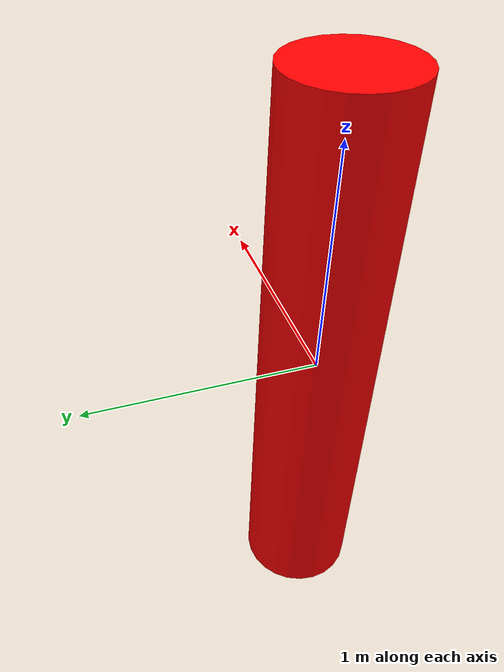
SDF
<sdf version='1.7'>
  <model name='cyl1'>
    <link name='link_1'>
      <inertial>
        <mass>2.54712</mass>
        <inertia>
          <ixx>0.0388448</ixx>
          <ixy>0</ixy>
          <ixz>0</ixz>
          <iyy>0.0388448</iyy>
          <iyz>0</iyz>
          <izz>0.0101698</izz>
        </inertia>
        <pose>0 0 0 0 -0 0</pose>
      </inertial>
      <pose>0 0 0 0 -0 0</pose>
      <gravity>1</gravity>
      <self_collide>0</self_collide>
      <kinematic>0</kinematic>
      <enable_wind>0</enable_wind>
      <visual name='visual'>
        <pose>0 0 0 0 -0 0</pose>
        <geometry>
          <cylinder>
            <radius>0.25</radius>
            <length>2.5</length>
          </cylinder>
        </geometry>
        <material>
          <ambient>1 0 0 1</ambient>
          <diffuse>1 0 0 1</diffuse>
          <specular>1 0 0 1</specular>
          <shader type='pixel'>
            <normal_map>__default__</normal_map>
          </shader>
          <script>
            <name>ModelPreview_1::link_1::visual_MATERIAL_</name>
            <uri>__default__</uri>
          </script>
          <emissive>0 0 0 1</emissive>
        </material>
        <transparency>0</transparency>
        <cast_shadows>1</cast_shadows>
      </visual>
      <collision name='collision'>
        <laser_retro>0</laser_retro>
        <max_contacts>10</max_contacts>
        <pose>0 0 0 0 -0 0</pose>
        <geometry>
          <cylinder>
            <radius>0.25</radius>
            <length>2.5</length>
          </cylinder>
        </geometry>
        <surface>
          <friction>
            <ode>
              <mu>1</mu>
              <mu2>1</mu2>
              <fdir1>0 0 0</fdir1>
              <slip1>0</slip1>
              <slip2>0</slip2>
            </ode>
            <torsional>
              <coefficient>1</coefficient>
              <patch_radius>0</patch_radius>
              <surface_radius>0</surface_radius>
              <use_patch_radius>1</use_patch_radius>
              <ode>
                <slip>0</slip>
              </ode>
            </torsional>
          </friction>
          <bounce>
            <restitution_coefficient>0</restitution_coefficient>
            <threshold>1e+06</threshold>
          </bounce>
          <contact>
            <collide_without_contact>0</collide_without_contact>
            <collide_without_contact_bitmask>1</collide_without_contact_bitmask>
            <collide_bitmask>1</collide_bitmask>
            <ode>
              <soft_cfm>0</soft_cfm>
              <soft_erp>0.2</soft_erp>
              <kp>1e+13</kp>
              <kd>1</kd>
              <max_vel>0.01</max_vel>
              <min_depth>0</min_depth>
            </ode>
            <bullet>
              <split_impulse>1</split_impulse>
              <split_impulse_penetration_threshold>-0.01</split_impulse_penetration_threshold>
              <soft_cfm>0</soft_cfm>
              <soft_erp>0.2</soft_erp>
              <kp>1e+13</kp>
              <kd>1</kd>
            </bullet>
          </contact>
        </surface>
      </collision>
    </link>
    <static>0</static>
    <allow_auto_disable>1</allow_auto_disable>
  </model>
</sdf>
